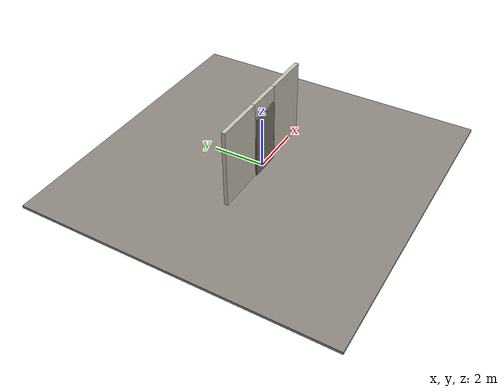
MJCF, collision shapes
<?xml version="1.0" ?>
<mujoco model="db0029_sliding_single_minimal">
  <compiler angle="radian" meshdir="../../hardware" texturedir="../../textures" autolimits="true" inertiafromgeom="false"/>
  <option timestep="0.002" integrator="implicitfast" cone="elliptic" impratio="10" noslip_iterations="3">
    <flag multiccd="enable"/>
  </option>
  <size memory="16M"/>
  <default>
    <geom condim="4" solref="0.005 1" solimp="0.95 0.99 0.001"/>
    <joint solreflimit="0.005 1" solimplimit="0.95 0.99 0.001"/>
    <tendon solreflimit="0.005 1"/>
    <equality solref="0.002 1"/>
  </default>
  <visual>
    <headlight ambient="0.4 0.4 0.4" diffuse="0.7 0.7 0.7" specular="0.2 0.2 0.2"/>
    <quality shadowsize="4096"/>
    <map znear="0.01" zfar="60"/>
  </visual>
  <asset>
    <mesh name="pull_2b47e55ff8" file="pull_2b47e55ff8.obj"/>
    <material name="mat_floor" rgba="0.55 0.53 0.5 1" specular="0.2" shininess="0.15" reflectance="0"/>
    <material name="mat_wall" rgba="0.78 0.76 0.7 1" specular="0.2" shininess="0.1" reflectance="0"/>
    <material name="mat_frame" rgba="0.82 0.7 0.5 1" specular="0.2" shininess="0.45" reflectance="0"/>
    <material name="mat_track" rgba="0.05 0.05 0.05 1" specular="0.38" shininess="0.3" reflectance="0.12"/>
    <material name="mat_leaf" rgba="0.5 0.46 0.425 1" specular="0.2" shininess="0.15" reflectance="0"/>
    <material name="mat_leaf_panel" rgba="0.46 0.423 0.391 1" specular="0.2" shininess="0.15" reflectance="0"/>
    <material name="mat_roller" rgba="0.65 0.66 0.68 1" specular="0.74" shininess="0.5" reflectance="0.36"/>
    <material name="mat_op_black_matte_metal" rgba="0.05 0.05 0.05 1" specular="0.38" shininess="0.3" reflectance="0.12"/>
    <material name="mat_hook" rgba="0.75 0.76 0.77 1" specular="0.8" shininess="0.65" reflectance="0.4"/>
    <texture name="skybox" type="skybox" builtin="gradient" rgb1="0.6 0.7 0.85" rgb2="0.9 0.92 0.95" width="256" height="256"/>
  </asset>
  <worldbody>
    <light name="sun" pos="1.5 -2.5 4" dir="-0.3 0.5 -0.8" directional="true" diffuse="0.8 0.8 0.8" specular="0.3 0.3 0.3" castshadow="true"/>
    <light name="fill" pos="-1.5 2.5 3" dir="0.3 -0.5 -0.7" directional="true" diffuse="0.35 0.35 0.4" castshadow="false"/>
    <camera name="robot_view" pos="0 -2.89375 2.02025" xyaxes="1 0 0 0 0.26963 0.962964" fovy="52"/>
    <camera name="far_view" pos="0 2.89375 2.02025" xyaxes="-1 0 0 0 -0.26963 0.962964" fovy="52"/>
    <camera name="iso" pos="2.19925 -2.43075 2.48325" xyaxes="0.741536 0.670913 0 -0.242917 0.268487 0.932151" fovy="46"/>
    <camera name="detail_handle" pos="0.6995 -0.9815 1.28" xyaxes="0.97561 0.219512 0 -0.070934 0.315262 0.94635" fovy="38"/>
    <geom name="floor" type="box" size="6 6 0.05" pos="0 0 -0.05" material="mat_floor" group="0" contype="1" conaffinity="1" friction="0.8 0.005 0.0001" density="2400"/>
    <geom name="wall_left" type="box" size="0.93075 0.0725 1.51" pos="-1.56925 0 1.51" material="mat_wall" group="0" contype="1" conaffinity="1" friction="0.6 0.005 0.0001" density="800"/>
    <geom name="wall_right" type="box" size="0.90075 0.0725 1.51" pos="1.59925 0 1.51" material="mat_wall" group="0" contype="1" conaffinity="1" friction="0.6 0.005 0.0001" density="800"/>
    <geom name="wall_header" type="box" size="0.6685 0.0725 0.2905" pos="0.03 0 2.7295" material="mat_wall" group="0" contype="1" conaffinity="1" friction="0.6 0.005 0.0001" density="800"/>
    <geom name="jamb_l" type="box" size="0.0095 0.0725 1.21" pos="-0.629 0 1.21" material="mat_frame" group="0" contype="1" conaffinity="1" friction="0.6 0.005 0.0001" density="300"/>
    <geom name="jamb_head" type="box" size="0.6385 0.0725 0.0095" pos="0 0 2.4295" material="mat_frame" group="0" contype="1" conaffinity="1" friction="0.6 0.005 0.0001" density="300"/>
    <geom name="jamb_latch_0" type="box" size="0.0395 0.0725 1.21" pos="0.659 0 1.21" material="mat_frame" group="0" contype="1" conaffinity="1" friction="0.6 0.005 0.0001" density="300"/>
    <site name="approach_point" pos="0 -1.5 0" quat="1 0 0 0" size="0.05" rgba="0.2 0.9 0.2 0.5" group="4"/>
    <site name="goal_point" pos="0 1.5 0" quat="1 0 0 0" size="0.05" rgba="0.2 0.9 0.2 0.5" group="4"/>
    <site name="door_plane_center" pos="0 0 1.21" quat="1 0 0 0" size="0.02" rgba="0.2 0.9 0.2 0.5" group="4"/>
    <body name="leaf" pos="0 -0.1145 0">
      <inertial pos="0.004122 -0.000469 1.210318" mass="62.488672" quat="-0.498848 0.499919 0.500183 0.501048" diaginertia="7.821032449 29.795830487 37.593304726"/>
      <joint name="leaf_slide" type="slide" axis="-1 0 0" limited="true" range="0 1.219" damping="5.124434" frictionloss="95.597508" armature="0.5"/>
      <geom name="leaf_slab" type="box" size="0.6095 0.022 1.2" pos="0 0 1.212" material="mat_leaf" group="0" contype="1" conaffinity="1" friction="0.45 0.005 0.0001" density="1"/>
      <geom name="leaf_pull_n" type="mesh" mesh="pull_2b47e55ff8" pos="0.5195 -0.022 1" quat="0.707107 0.707107 0 0" material="mat_op_black_matte_metal" group="1" contype="0" conaffinity="0" density="3000"/>
      <geom name="leaf_pull_col_n" type="capsule" size="0.006 0.13" pos="0.5195 -0.067 1" material="mat_op_black_matte_metal" group="3" contype="1" conaffinity="1" rgba="0.8 0.3 0.3 0.25" friction="0.7 0.01 0.0001" density="3000"/>
      <site name="leaf_pull_grip_n" pos="0.5195 -0.067 1" quat="1 0 0 0" size="0.012" rgba="0.2 0.9 0.2 0.5" group="4"/>
      <site name="leaf_edge_mid" pos="0.6095 0 1.212" quat="1 0 0 0" size="0.02" rgba="0.2 0.9 0.2 0.5" group="4"/>
    </body>
  </worldbody>
  <sensor>
    <jointpos name="leaf_slide_pos" joint="leaf_slide"/>
    <jointvel name="leaf_slide_vel" joint="leaf_slide"/>
  </sensor>
</mujoco>
